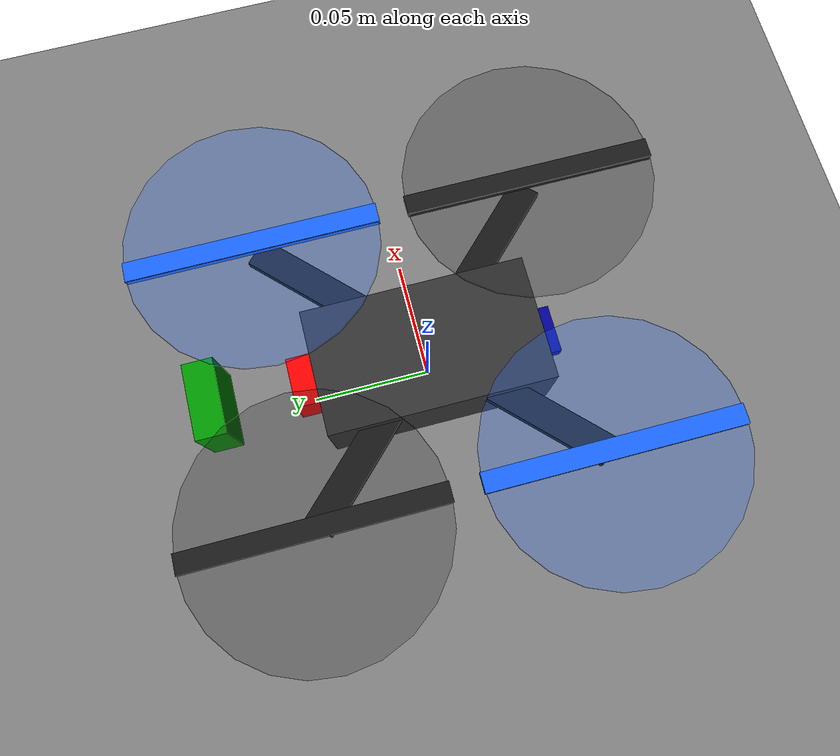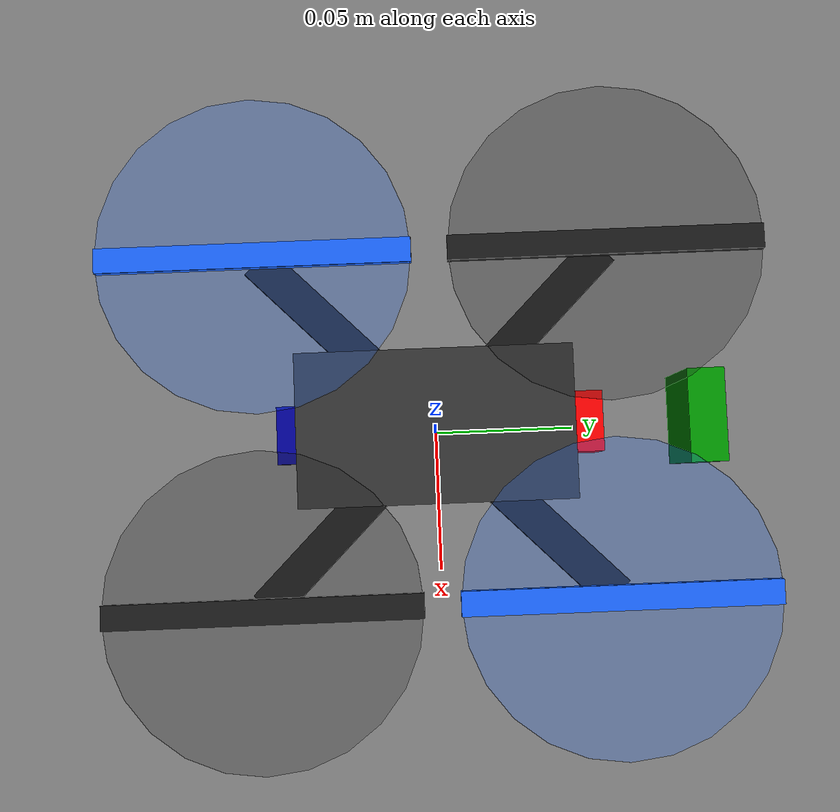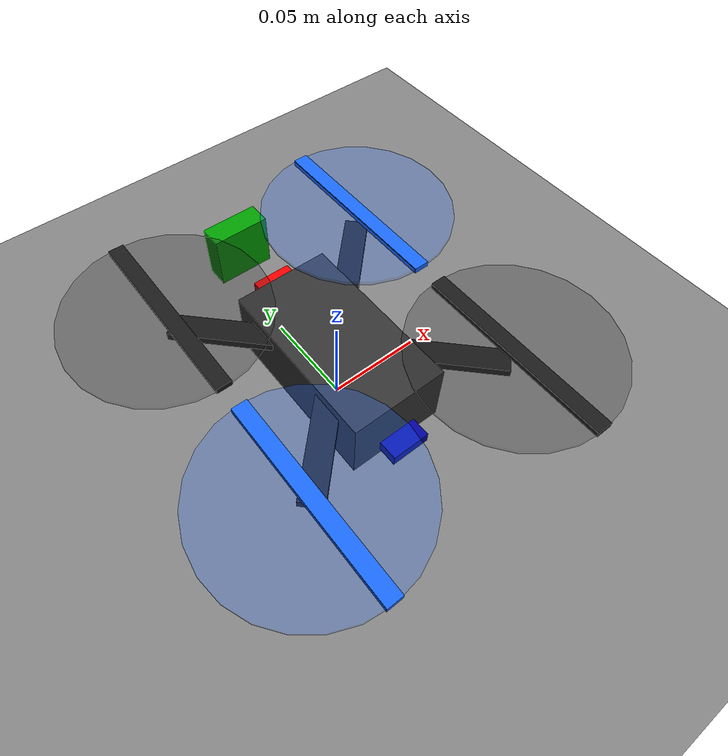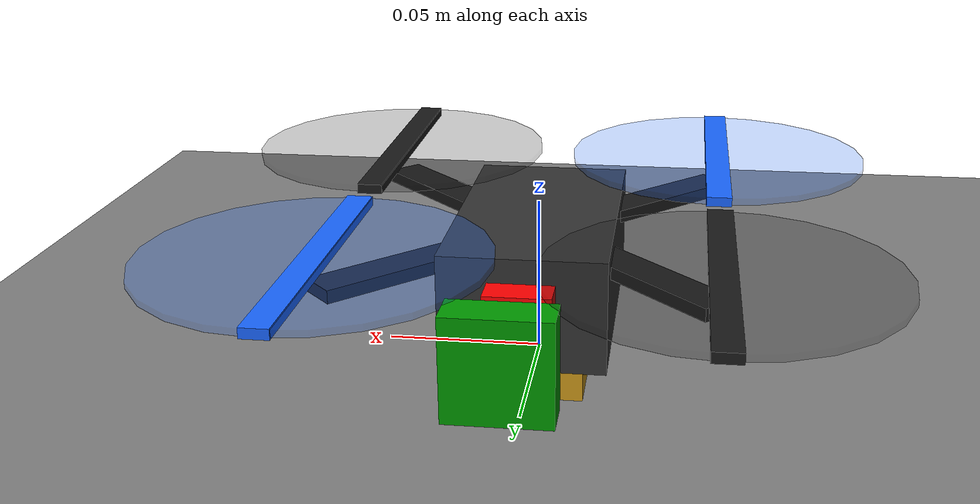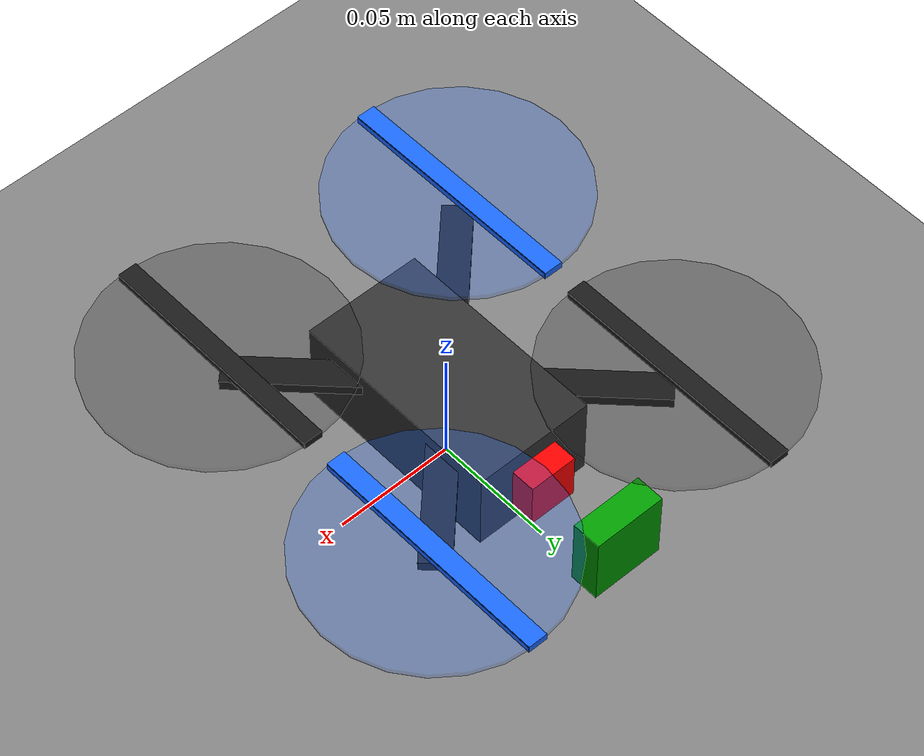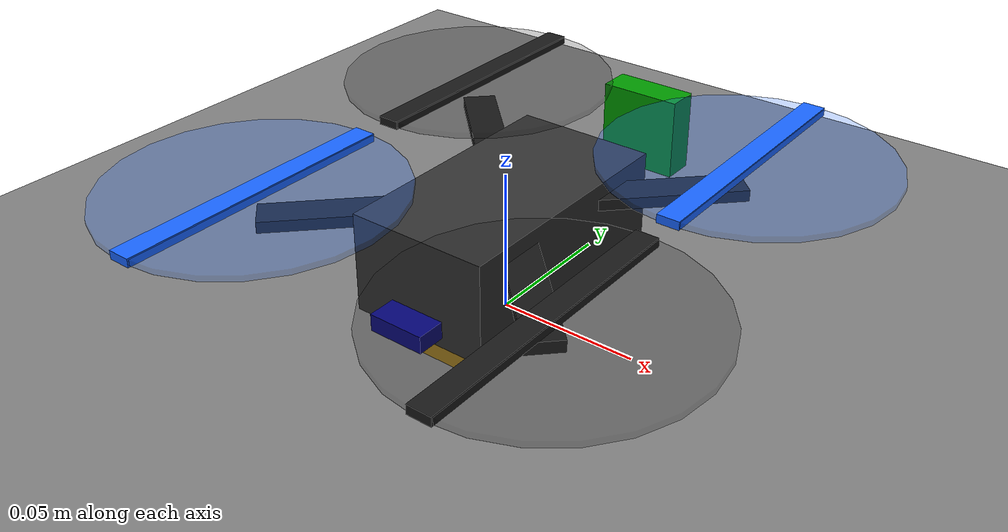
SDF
<?xml version="1.0"?>
<!-- generated by ecps295/gazebo/make_quad.py: ecps295_flat; UCI coordinates to match SITL --home -->
<sdf version="1.9">
  <world name="ecps295_flat">
    <physics name="1ms" type="ignore"><max_step_size>0.001</max_step_size><real_time_factor>1.0</real_time_factor></physics>
    <plugin filename="gz-sim-physics-system" name="gz::sim::systems::Physics"/>
    <plugin filename="gz-sim-sensors-system" name="gz::sim::systems::Sensors"><render_engine>ogre2</render_engine></plugin>
    <plugin filename="gz-sim-user-commands-system" name="gz::sim::systems::UserCommands"/>
    <plugin filename="gz-sim-scene-broadcaster-system" name="gz::sim::systems::SceneBroadcaster"/>
    <plugin filename="gz-sim-imu-system" name="gz::sim::systems::Imu"/>
    <plugin filename="gz-sim-navsat-system" name="gz::sim::systems::NavSat"/>
    <scene><ambient>1 1 1</ambient><background>0.8 0.8 0.8</background><sky/></scene>
    <spherical_coordinates>
      <latitude_deg>33.6430</latitude_deg><longitude_deg>-117.8420</longitude_deg><elevation>20</elevation>
      <heading_deg>0</heading_deg><surface_model>EARTH_WGS84</surface_model>
    </spherical_coordinates>
    <light type="directional" name="sun"><cast_shadows>true</cast_shadows><pose>0 0 10 0 0 0</pose>
      <diffuse>0.8 0.8 0.8 1</diffuse><specular>0.8 0.8 0.8 1</specular><direction>-0.5 0.1 -0.9</direction></light>
    <model name="ground_plane"><static>true</static>
      <link name="link">
        <collision name="collision"><geometry><plane><normal>0 0 1</normal><size>50 50</size></plane></geometry></collision>
        <visual name="visual"><geometry><plane><normal>0 0 1</normal><size>50 50</size></plane></geometry>
          <material><ambient>0.5 0.5 0.5 1</ambient><diffuse>0.5 0.5 0.5 1</diffuse></material></visual>
      </link>
    </model>

    <include><uri>model://ecps295_quad</uri><pose degrees="true">0 0 0.03 0 0 90</pose></include>
  </world>
</sdf>

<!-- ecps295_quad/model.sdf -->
<!-- generated by ecps295/gazebo/make_quad.py; edit the generator, not this file -->
<sdf version="1.9">
  <model name="ecps295_quad">
    <pose>0 0 0.03 0 0 0</pose>
    <link name="base_link">
      <inertial><pose>0.0031 0 0 0 0 0</pose><mass>0.2830</mass><inertia><ixx>2.000e-04</ixx><ixy>0</ixy><ixz>0</ixz><iyy>2.000e-04</iyy><iyz>0</iyz><izz>3.500e-04</izz></inertia></inertial>
      <collision name="body"><geometry><box><size>0.09 0.05 0.04</size></box></geometry></collision>
      <collision name="legs"><pose>0 0 -0.02 0 0 0</pose><geometry><box><size>0.10 0.10 0.005</size></box></geometry></collision>
      <visual name="body"><geometry><box><size>0.09 0.05 0.035</size></box></geometry>
        <material><ambient>0.2 0.2 0.2 1</ambient><diffuse>0.2 0.2 0.2 1</diffuse></material></visual>
      <visual name="battery"><pose>0 0 -0.03 0 0 0</pose><geometry><box><size>0.075 0.035 0.02</size></box></geometry>
        <material><ambient>0.8 0.6 0.1 1</ambient><diffuse>0.8 0.6 0.1 1</diffuse></material></visual>
      <visual name="arm_a"><pose>0 0 0.01 0 0 0.78540</pose><geometry><box><size>0.16 0.012 0.004</size></box></geometry>
        <material><ambient>0.1 0.1 0.1 1</ambient><diffuse>0.1 0.1 0.1 1</diffuse></material></visual>
      <visual name="arm_b"><pose>0 0 0.01 0 0 -0.78540</pose><geometry><box><size>0.16 0.012 0.004</size></box></geometry>
        <material><ambient>0.1 0.1 0.1 1</ambient><diffuse>0.1 0.1 0.1 1</diffuse></material></visual>
      <visual name="nose"><pose>0.05 0 0 0 0 0</pose><geometry><box><size>0.01 0.02 0.02</size></box></geometry>
        <material><ambient>1 0 0 1</ambient><diffuse>1 0 0 1</diffuse></material></visual>
      <sensor name="imu_sensor" type="imu">
        <gz_frame_id>base_link</gz_frame_id>
        <pose degrees="true">0 0 0 180 0 0</pose>
        <always_on>1</always_on><update_rate>1000.0</update_rate>
      </sensor>

      <visual name="cam"><pose>0.0866 0 0.0050 0 0 0</pose><geometry><box><size>0.012 0.03 0.03</size></box></geometry>
        <material><ambient>0 0.6 0 1</ambient><diffuse>0 0.6 0 1</diffuse></material></visual>
      <sensor name="front_camera" type="wideanglecamera">
        <pose>0.0926 0 0.0050 0 0.20944 0</pose>
        <always_on>1</always_on><update_rate>60.0</update_rate><topic>ecps295/camera</topic>
        <camera>
          <horizontal_fov>2.09440</horizontal_fov>
          <image><width>640</width><height>480</height><format>R8G8B8</format></image>
          <clip><near>0.02</near><far>200</far></clip>
          <noise><type>gaussian</type><mean>0</mean><stddev>0.007</stddev></noise>
          <lens><type>equidistant</type><scale_to_hfov>true</scale_to_hfov><cutoff_angle>1.5708</cutoff_angle><env_texture_size>1024</env_texture_size></lens>
        </camera>
      </sensor>

      <visual name="tof_board"><pose>-0.045 0 -0.011 0 0 0</pose><geometry><box><size>0.02 0.02 0.006</size></box></geometry>
        <material><ambient>0 0 0.6 1</ambient><diffuse>0 0 0.6 1</diffuse></material></visual>
      <sensor name="tof" type="gpu_lidar">
        <pose>-0.045 0 -0.015 0 1.57080 0</pose>
        <always_on>1</always_on><update_rate>10.0</update_rate><topic>ecps295/tof</topic>
        <lidar>
          <scan><horizontal><samples>5</samples><resolution>1</resolution><min_angle>-0.2356</min_angle><max_angle>0.2356</max_angle></horizontal><vertical><samples>5</samples><resolution>1</resolution><min_angle>-0.2356</min_angle><max_angle>0.2356</max_angle></vertical></scan>
          <range><min>0.005</min><max>2.0</max><resolution>0.001</resolution></range>
          <noise><type>gaussian</type><mean>0</mean><stddev>0.01</stddev></noise>
        </lidar>
      </sensor>

    </link>

    <link name="rotor_0">
      <pose>0.0566 -0.0566 0.02 0 0 0</pose>
      <inertial><mass>0.003</mass><inertia><ixx>8.000e-07</ixx><ixy>0</ixy><ixz>0</ixz><iyy>8.000e-07</iyy><iyz>0</iyz><izz>1.600e-06</izz></inertia></inertial>
      <collision name="collision"><geometry><cylinder><length>0.003</length><radius>0.0508</radius></cylinder></geometry></collision>
      <visual name="disc"><transparency>0.75</transparency><geometry><cylinder><length>0.002</length><radius>0.0508</radius></cylinder></geometry>
        <material><ambient>0.1 0.4 1 1</ambient><diffuse>0.1 0.4 1 1</diffuse></material></visual>
      <visual name="blade"><geometry><box><size>0.1016 0.008 0.003</size></box></geometry>
        <material><ambient>0.1 0.4 1 1</ambient><diffuse>0.1 0.4 1 1</diffuse></material></visual>
    </link>
    <joint name="rotor_0_joint" type="revolute">
      <child>rotor_0</child><parent>base_link</parent>
      <axis><xyz>0 0 1</xyz><limit><lower>-1e16</lower><upper>1e16</upper></limit><dynamics><damping>1e-7</damping></dynamics></axis>
    </joint>
    <link name="rotor_1">
      <pose>-0.0566 0.0566 0.02 0 0 0</pose>
      <inertial><mass>0.003</mass><inertia><ixx>8.000e-07</ixx><ixy>0</ixy><ixz>0</ixz><iyy>8.000e-07</iyy><iyz>0</iyz><izz>1.600e-06</izz></inertia></inertial>
      <collision name="collision"><geometry><cylinder><length>0.003</length><radius>0.0508</radius></cylinder></geometry></collision>
      <visual name="disc"><transparency>0.75</transparency><geometry><cylinder><length>0.002</length><radius>0.0508</radius></cylinder></geometry>
        <material><ambient>0.1 0.4 1 1</ambient><diffuse>0.1 0.4 1 1</diffuse></material></visual>
      <visual name="blade"><geometry><box><size>0.1016 0.008 0.003</size></box></geometry>
        <material><ambient>0.1 0.4 1 1</ambient><diffuse>0.1 0.4 1 1</diffuse></material></visual>
    </link>
    <joint name="rotor_1_joint" type="revolute">
      <child>rotor_1</child><parent>base_link</parent>
      <axis><xyz>0 0 1</xyz><limit><lower>-1e16</lower><upper>1e16</upper></limit><dynamics><damping>1e-7</damping></dynamics></axis>
    </joint>
    <link name="rotor_2">
      <pose>0.0566 0.0566 0.02 0 0 0</pose>
      <inertial><mass>0.003</mass><inertia><ixx>8.000e-07</ixx><ixy>0</ixy><ixz>0</ixz><iyy>8.000e-07</iyy><iyz>0</iyz><izz>1.600e-06</izz></inertia></inertial>
      <collision name="collision"><geometry><cylinder><length>0.003</length><radius>0.0508</radius></cylinder></geometry></collision>
      <visual name="disc"><transparency>0.75</transparency><geometry><cylinder><length>0.002</length><radius>0.0508</radius></cylinder></geometry>
        <material><ambient>0.1 0.1 0.1 1</ambient><diffuse>0.1 0.1 0.1 1</diffuse></material></visual>
      <visual name="blade"><geometry><box><size>0.1016 0.008 0.003</size></box></geometry>
        <material><ambient>0.1 0.1 0.1 1</ambient><diffuse>0.1 0.1 0.1 1</diffuse></material></visual>
    </link>
    <joint name="rotor_2_joint" type="revolute">
      <child>rotor_2</child><parent>base_link</parent>
      <axis><xyz>0 0 1</xyz><limit><lower>-1e16</lower><upper>1e16</upper></limit><dynamics><damping>1e-7</damping></dynamics></axis>
    </joint>
    <link name="rotor_3">
      <pose>-0.0566 -0.0566 0.02 0 0 0</pose>
      <inertial><mass>0.003</mass><inertia><ixx>8.000e-07</ixx><ixy>0</ixy><ixz>0</ixz><iyy>8.000e-07</iyy><iyz>0</iyz><izz>1.600e-06</izz></inertia></inertial>
      <collision name="collision"><geometry><cylinder><length>0.003</length><radius>0.0508</radius></cylinder></geometry></collision>
      <visual name="disc"><transparency>0.75</transparency><geometry><cylinder><length>0.002</length><radius>0.0508</radius></cylinder></geometry>
        <material><ambient>0.1 0.1 0.1 1</ambient><diffuse>0.1 0.1 0.1 1</diffuse></material></visual>
      <visual name="blade"><geometry><box><size>0.1016 0.008 0.003</size></box></geometry>
        <material><ambient>0.1 0.1 0.1 1</ambient><diffuse>0.1 0.1 0.1 1</diffuse></material></visual>
    </link>
    <joint name="rotor_3_joint" type="revolute">
      <child>rotor_3</child><parent>base_link</parent>
      <axis><xyz>0 0 1</xyz><limit><lower>-1e16</lower><upper>1e16</upper></limit><dynamics><damping>1e-7</damping></dynamics></axis>
    </joint>
    <plugin filename="gz-sim-joint-state-publisher-system" name="gz::sim::systems::JointStatePublisher"/>

    <plugin filename="gz-sim-lift-drag-system" name="gz::sim::systems::LiftDrag">
      <a0>0.3</a0><alpha_stall>1.4</alpha_stall><cla>4.25</cla><cda>0.1</cda><cma>0.0</cma>
      <cla_stall>-0.025</cla_stall><cda_stall>0.0</cda_stall><cma_stall>0.0</cma_stall>
      <area>0.002400</area><air_density>1.2041</air_density>
      <cp>0.0356 0 0</cp><forward>0 1 0</forward><upward>0 0 1</upward>
      <link_name>rotor_0</link_name>
    </plugin>
    <plugin filename="gz-sim-lift-drag-system" name="gz::sim::systems::LiftDrag">
      <a0>0.3</a0><alpha_stall>1.4</alpha_stall><cla>4.25</cla><cda>0.1</cda><cma>0.0</cma>
      <cla_stall>-0.025</cla_stall><cda_stall>0.0</cda_stall><cma_stall>0.0</cma_stall>
      <area>0.002400</area><air_density>1.2041</air_density>
      <cp>-0.0356 0 0</cp><forward>0 -1 0</forward><upward>0 0 1</upward>
      <link_name>rotor_0</link_name>
    </plugin>
    <plugin filename="gz-sim-lift-drag-system" name="gz::sim::systems::LiftDrag">
      <a0>0.3</a0><alpha_stall>1.4</alpha_stall><cla>4.25</cla><cda>0.1</cda><cma>0.0</cma>
      <cla_stall>-0.025</cla_stall><cda_stall>0.0</cda_stall><cma_stall>0.0</cma_stall>
      <area>0.002400</area><air_density>1.2041</air_density>
      <cp>0.0356 0 0</cp><forward>0 1 0</forward><upward>0 0 1</upward>
      <link_name>rotor_1</link_name>
    </plugin>
    <plugin filename="gz-sim-lift-drag-system" name="gz::sim::systems::LiftDrag">
      <a0>0.3</a0><alpha_stall>1.4</alpha_stall><cla>4.25</cla><cda>0.1</cda><cma>0.0</cma>
      <cla_stall>-0.025</cla_stall><cda_stall>0.0</cda_stall><cma_stall>0.0</cma_stall>
      <area>0.002400</area><air_density>1.2041</air_density>
      <cp>-0.0356 0 0</cp><forward>0 -1 0</forward><upward>0 0 1</upward>
      <link_name>rotor_1</link_name>
    </plugin>
    <plugin filename="gz-sim-lift-drag-system" name="gz::sim::systems::LiftDrag">
      <a0>0.3</a0><alpha_stall>1.4</alpha_stall><cla>4.25</cla><cda>0.1</cda><cma>0.0</cma>
      <cla_stall>-0.025</cla_stall><cda_stall>0.0</cda_stall><cma_stall>0.0</cma_stall>
      <area>0.002400</area><air_density>1.2041</air_density>
      <cp>0.0356 0 0</cp><forward>0 -1 0</forward><upward>0 0 1</upward>
      <link_name>rotor_2</link_name>
    </plugin>
    <plugin filename="gz-sim-lift-drag-system" name="gz::sim::systems::LiftDrag">
      <a0>0.3</a0><alpha_stall>1.4</alpha_stall><cla>4.25</cla><cda>0.1</cda><cma>0.0</cma>
      <cla_stall>-0.025</cla_stall><cda_stall>0.0</cda_stall><cma_stall>0.0</cma_stall>
      <area>0.002400</area><air_density>1.2041</air_density>
      <cp>-0.0356 0 0</cp><forward>0 1 0</forward><upward>0 0 1</upward>
      <link_name>rotor_2</link_name>
    </plugin>
    <plugin filename="gz-sim-lift-drag-system" name="gz::sim::systems::LiftDrag">
      <a0>0.3</a0><alpha_stall>1.4</alpha_stall><cla>4.25</cla><cda>0.1</cda><cma>0.0</cma>
      <cla_stall>-0.025</cla_stall><cda_stall>0.0</cda_stall><cma_stall>0.0</cma_stall>
      <area>0.002400</area><air_density>1.2041</air_density>
      <cp>0.0356 0 0</cp><forward>0 -1 0</forward><upward>0 0 1</upward>
      <link_name>rotor_3</link_name>
    </plugin>
    <plugin filename="gz-sim-lift-drag-system" name="gz::sim::systems::LiftDrag">
      <a0>0.3</a0><alpha_stall>1.4</alpha_stall><cla>4.25</cla><cda>0.1</cda><cma>0.0</cma>
      <cla_stall>-0.025</cla_stall><cda_stall>0.0</cda_stall><cma_stall>0.0</cma_stall>
      <area>0.002400</area><air_density>1.2041</air_density>
      <cp>-0.0356 0 0</cp><forward>0 1 0</forward><upward>0 0 1</upward>
      <link_name>rotor_3</link_name>
    </plugin>

    <plugin filename="gz-sim-apply-joint-force-system" name="gz::sim::systems::ApplyJointForce">
      <joint_name>rotor_0_joint</joint_name>
    </plugin>
    <plugin filename="gz-sim-apply-joint-force-system" name="gz::sim::systems::ApplyJointForce">
      <joint_name>rotor_1_joint</joint_name>
    </plugin>
    <plugin filename="gz-sim-apply-joint-force-system" name="gz::sim::systems::ApplyJointForce">
      <joint_name>rotor_2_joint</joint_name>
    </plugin>
    <plugin filename="gz-sim-apply-joint-force-system" name="gz::sim::systems::ApplyJointForce">
      <joint_name>rotor_3_joint</joint_name>
    </plugin>
    <plugin name="ArduPilotPlugin" filename="ArduPilotPlugin">
      <fdm_addr>127.0.0.1</fdm_addr>
      <fdm_port_in>9002</fdm_port_in>
      <connectionTimeoutMaxCount>5</connectionTimeoutMaxCount>
      <lock_step>1</lock_step>
      <no_time_sync>1</no_time_sync>
      <have_32_channels>0</have_32_channels>
      <modelXYZToAirplaneXForwardZDown degrees="true">0 0 0 180 0 0</modelXYZToAirplaneXForwardZDown>
      <gazeboXYZToNED degrees="true">0 0 0 180 0 90</gazeboXYZToNED>
      <imuName>base_link::imu_sensor</imuName>
      <sensor><type>range</type><index>1</index><topic>/ecps295/tof</topic></sensor>

      <control channel="0">
        <jointName>rotor_0_joint</jointName><useForce>1</useForce>
        <multiplier>838.0</multiplier><offset>0</offset>
        <servo_min>1000</servo_min><servo_max>2000</servo_max>
        <type>VELOCITY</type>
        <p_gain>1.000e-04</p_gain><i_gain>0</i_gain><d_gain>0</d_gain><i_max>0</i_max><i_min>0</i_min>
        <cmd_max>0.05</cmd_max><cmd_min>-0.05</cmd_min>
        <controlVelocitySlowdownSim>1</controlVelocitySlowdownSim>
      </control>
      <control channel="1">
        <jointName>rotor_1_joint</jointName><useForce>1</useForce>
        <multiplier>838.0</multiplier><offset>0</offset>
        <servo_min>1000</servo_min><servo_max>2000</servo_max>
        <type>VELOCITY</type>
        <p_gain>1.000e-04</p_gain><i_gain>0</i_gain><d_gain>0</d_gain><i_max>0</i_max><i_min>0</i_min>
        <cmd_max>0.05</cmd_max><cmd_min>-0.05</cmd_min>
        <controlVelocitySlowdownSim>1</controlVelocitySlowdownSim>
      </control>
      <control channel="2">
        <jointName>rotor_2_joint</jointName><useForce>1</useForce>
        <multiplier>-838.0</multiplier><offset>0</offset>
        <servo_min>1000</servo_min><servo_max>2000</servo_max>
        <type>VELOCITY</type>
        <p_gain>1.000e-04</p_gain><i_gain>0</i_gain><d_gain>0</d_gain><i_max>0</i_max><i_min>0</i_min>
        <cmd_max>0.05</cmd_max><cmd_min>-0.05</cmd_min>
        <controlVelocitySlowdownSim>1</controlVelocitySlowdownSim>
      </control>
      <control channel="3">
        <jointName>rotor_3_joint</jointName><useForce>1</useForce>
        <multiplier>-838.0</multiplier><offset>0</offset>
        <servo_min>1000</servo_min><servo_max>2000</servo_max>
        <type>VELOCITY</type>
        <p_gain>1.000e-04</p_gain><i_gain>0</i_gain><d_gain>0</d_gain><i_max>0</i_max><i_min>0</i_min>
        <cmd_max>0.05</cmd_max><cmd_min>-0.05</cmd_min>
        <controlVelocitySlowdownSim>1</controlVelocitySlowdownSim>
      </control>
    </plugin>
  </model>
</sdf>
